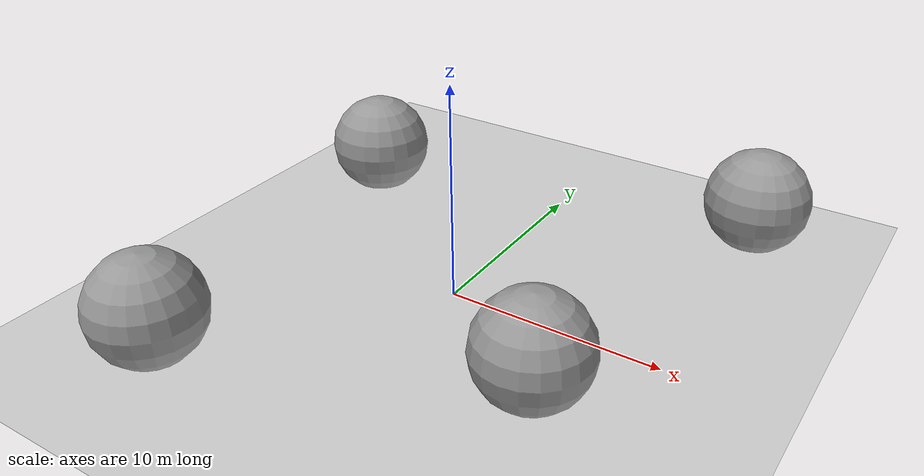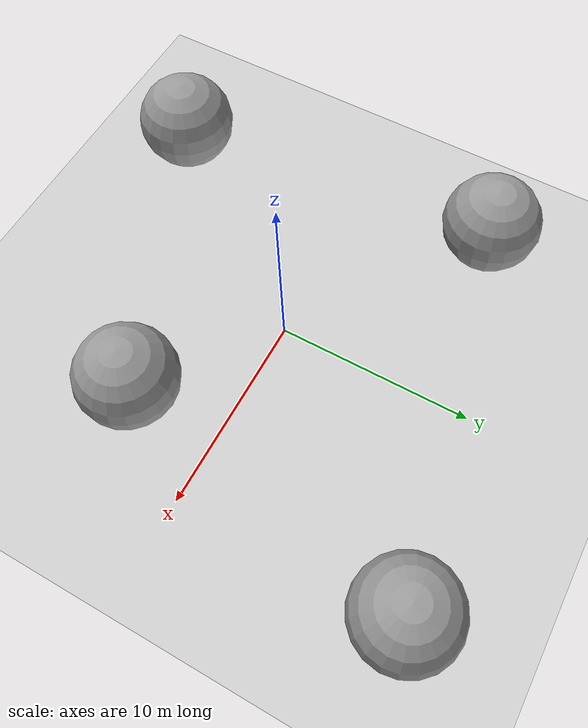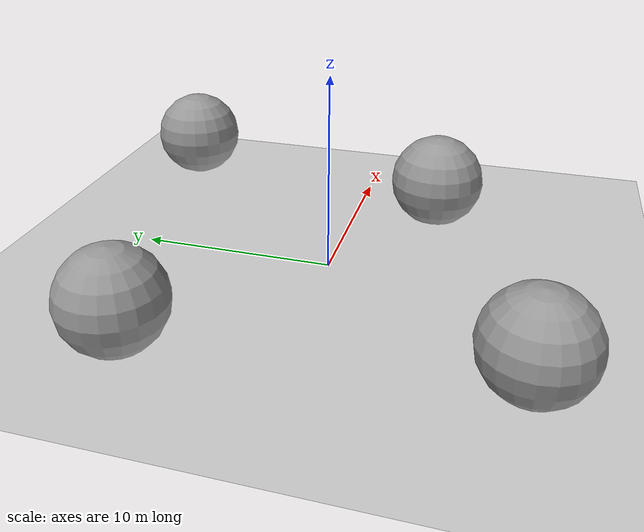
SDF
<sdf version="1.6">
 <world name="default">
  <light name="sun" type="directional">
   <pose>0 0 10 0 -0 0</pose>
   <diffuse>0.8 0.8 0.8 1</diffuse>
   <specular>0.2 0.2 0.2 1</specular>
   <attenuation>
    <range>1000</range>
    <constant>0.9</constant>
    <linear>0.01</linear>
    <quadratic>0.001</quadratic>
   </attenuation>
   <direction>-0.5 0.1 -0.9</direction>
  </light>
  <model name="ground_plane">
   <static>1</static>
   <link name="link">
    <collision name="collision">
     <geometry><plane><normal>0 0 1</normal><size>100 100</size></plane></geometry>
     <surface>
      <contact><collide_bitmask>65535</collide_bitmask></contact>
      <friction><ode><mu>100</mu><mu2>50</mu2></ode></friction>
     </surface>
    </collision>
    <visual name="visual">
     <cast_shadows>0</cast_shadows>
     <geometry><plane><normal>0 0 1</normal><size>100 100</size></plane></geometry>
     <material>
      <script><uri>file://media/materials/scripts/gazebo.material</uri><name>Gazebo/Grey</name></script>
     </material>
    </visual>
   </link>
  </model>
  <gravity>0 0 -9.8</gravity>
  <magnetic_field>6e-06 2.3e-05 -4.2e-05</magnetic_field>
  <atmosphere type="adiabatic"/>
  <physics name="default_physics" default="0" type="ode">
   <max_step_size>0.001</max_step_size>
   <real_time_factor>1</real_time_factor>
   <real_time_update_rate>1000</real_time_update_rate>
  </physics>
  <scene><ambient>0.4 0.4 0.4 1</ambient><background>0.7 0.7 0.7 1</background><shadows>1</shadows></scene>
  <spherical_coordinates>
   <surface_model>EARTH_WGS84</surface_model>
   <latitude_deg>0</latitude_deg>
   <longitude_deg>0</longitude_deg>
   <elevation>0</elevation>
   <heading_deg>0</heading_deg>
  </spherical_coordinates>
  <model name="unit_sphere">
   <pose>9.8452 11.3015 2.5 0 -0 0</pose>
   <link name="link">
    <inertial>
     <mass>1</mass>
     <inertia><ixx>0.1</ixx><ixy>0</ixy><ixz>0</ixz><iyy>0.1</iyy><iyz>0</iyz><izz>0.1</izz></inertia>
    </inertial>
    <collision name="collision"><geometry><sphere><radius>2.5</radius></sphere></geometry></collision>
    <visual name="visual">
     <geometry><sphere><radius>2.5</radius></sphere></geometry>
     <material>
      <script><name>Gazebo/Grey</name><uri>file://media/materials/scripts/gazebo.material</uri></script>
     </material>
    </visual>
   </link>
  </model>
  <model name="unit_sphere_clone">
   <pose>6.57837 -4.4697 2.5 0 -0 0</pose>
   <link name="link">
    <inertial>
     <mass>1</mass>
     <inertia><ixx>0.1</ixx><ixy>0</ixy><ixz>0</ixz><iyy>0.1</iyy><iyz>0</iyz><izz>0.1</izz></inertia>
    </inertial>
    <collision name="collision"><geometry><sphere><radius>2.5</radius></sphere></geometry></collision>
    <visual name="visual">
     <geometry><sphere><radius>2.5</radius></sphere></geometry>
     <material>
      <script><name>Gazebo/Grey</name><uri>file://media/materials/scripts/gazebo.material</uri></script>
     </material>
    </visual>
   </link>
  </model>
  <model name="unit_sphere_clone_0">
   <pose>-7.59809 -10.3365 2.5 0 -0 0</pose>
   <link name="link">
    <inertial>
     <mass>1</mass>
     <inertia><ixx>0.1</ixx><ixy>0</ixy><ixz>0</ixz><iyy>0.1</iyy><iyz>0</iyz><izz>0.1</izz></inertia>
    </inertial>
    <collision name="collision"><geometry><sphere><radius>2.5</radius></sphere></geometry></collision>
    <visual name="visual">
     <geometry><sphere><radius>2.5</radius></sphere></geometry>
     <material>
      <script><name>Gazebo/Grey</name><uri>file://media/materials/scripts/gazebo.material</uri></script>
     </material>
    </visual>
   </link>
  </model>
  <model name="unit_sphere_clone_1">
   <pose>-9.26396 6.86842 2.5 0 -0 0</pose>
   <link name="link">
    <inertial>
     <mass>1</mass>
     <inertia><ixx>0.1</ixx><ixy>0</ixy><ixz>0</ixz><iyy>0.1</iyy><iyz>0</iyz><izz>0.1</izz></inertia>
    </inertial>
    <collision name="collision"><geometry><sphere><radius>2.5</radius></sphere></geometry></collision>
    <visual name="visual">
     <geometry><sphere><radius>2.5</radius></sphere></geometry>
     <material>
      <script><name>Gazebo/Grey</name><uri>file://media/materials/scripts/gazebo.material</uri></script>
     </material>
    </visual>
   </link>
  </model>
 </world>
</sdf>
